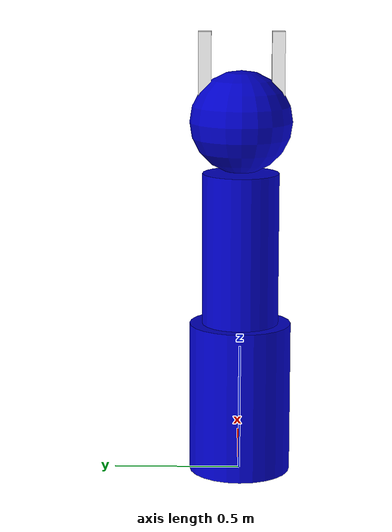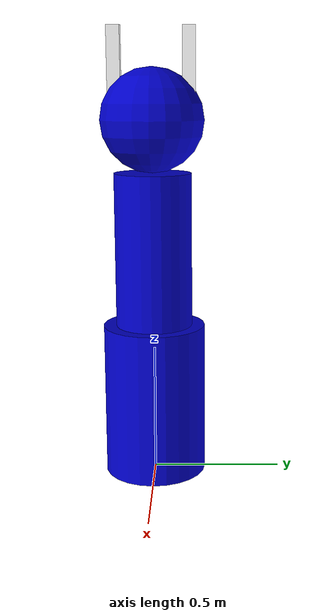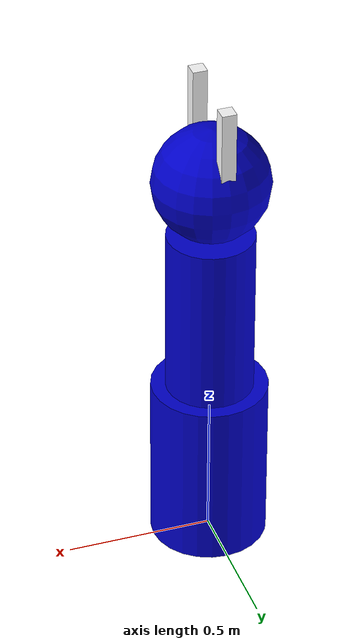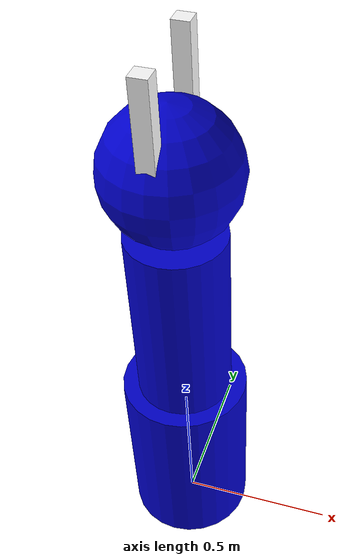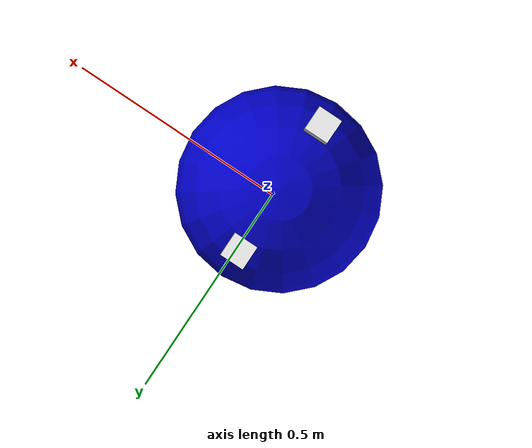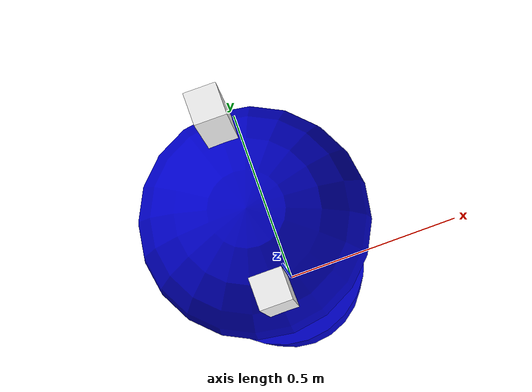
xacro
<?xml version="1.0"?>
<robot name="my_arm" xmlns:xacro="http://www.ros.org/wiki/xacro">

<!-- Import all Gazebo-customization elements, including Gazebo colors -->
<xacro:include filename="$(find arm_description)/urdf/my_arm.gazebo" />
<!-- Included URDF/XACRO Files -->
<xacro:include filename="$(find arm_description)/urdf/materials.xacro" />

<!-- Used for fixing robot to Gazebo 'base_link' -->
<link name="world">
</link>

<!-- base_link -->
<link name="base_link">
    <visual>
      <geometry>
            <box size = "0.1 0.1 0.1"/>
        </geometry>
        <material name="blue">
            <color rgba="0 0 .8 1"/>
        </material>
        <origin xyz="0 0 0"/>
    </visual>

    <collision>
      <geometry>
            <box size = "0.1 0.1 0.1"/>
        </geometry>
        <origin xyz="0 0 0"/>
    </collision>

    <inertial>
      <mass value="2e-06"/>
      <inertia ixx="1.1e-09" ixy="0" ixz="0" iyy="1.1e-09" iyz="0" izz="1.1e-09"/>
    </inertial>

</link>

<!-- upperArm -->
<xacro:property name="upperArmWidth" value="0.2" />
<xacro:property name="upperArmLen" value="0.6" />
<xacro:property name="upperArmMass" value="10" />
<link name="upperArm">
    <visual>
        <geometry>
            <cylinder radius="${upperArmWidth}" length="${upperArmLen}"/>
        </geometry>
        <material name="blue">
            <color rgba="0 0 .8 1"/>
        </material>
        <origin xyz="0 0 ${upperArmLen/2}"/>
    </visual>

    <collision>
        <geometry>
            <cylinder radius="${upperArmWidth}" length="${upperArmLen}"/>
        </geometry>
        <origin xyz="0 0 ${upperArmLen/2}"/>
    </collision>

    <inertial>
        <origin xyz="0 0 ${upperArmLen/2}"/>
        <mass value="${upperArmMass}"/>
        <inertia ixx="1.0" ixy="0.0" ixz="0.0"
                 iyy="1.0" iyz="0.0"
                 izz="1.0" />
    </inertial>

</link>
<!-- lowerArm -->
<xacro:property name="lowerArmWidth" value=".15" />
<xacro:property name="lowerArmLen" value=".6" />
<xacro:property name="lowerArmMass" value="10" />
<link name="lowerArm">
    <visual>
        <geometry>
            <cylinder radius="${lowerArmWidth}" length="${lowerArmLen}"/>
        </geometry>
        <material name="blue">
            <color rgba="0 0 .8 1"/>
        </material>
        <origin xyz="0 0 ${upperArmLen/2}"/>
    </visual>

    <collision>
        <geometry>
            <cylinder radius="${lowerArmWidth}" length="${lowerArmLen}"/>
        </geometry>
        <origin xyz="0 0 ${upperArmLen/2}"/>
    </collision>

    <inertial>
        <origin xyz="0 0 ${upperArmLen/2}"/>
        <mass value="${lowerArmMass}"/>
        <inertia ixx="1.0" ixy="0.0" ixz="0.0"
                 iyy="1.0" iyz="0.0"
                 izz="1.0" />
    </inertial>

</link>
<!-- hand -->
<xacro:property name="handRadius" value=".2" />
<link name="hand">
    <visual>
        <geometry>
            <sphere radius="${handRadius}"/>
        </geometry>
        <material name="blue">
            <color rgba="0 0 .8 1"/>
        </material>
        <origin xyz="0 0 ${handRadius}"/>
    </visual>

    <collision>
        <geometry>
            <sphere radius="${handRadius}"/>
        </geometry>
        <origin xyz="0 0 ${handRadius}"/>
    </collision>

    <inertial>
        <origin xyz="0 0 ${handRadius}"/>
        <mass value="${lowerArmMass}"/>
        <inertia ixx="1.0" ixy="0.0" ixz="0.0"
                 iyy="1.0" iyz="0.0"
                 izz="1.0" />
    </inertial>
</link>
<!-- Finger Macro -->
<xacro:property name="fingerWidth" value=".05" />
<xacro:property name="fingerLen" value=".3" />
<xacro:property name="fingerHeight" value=".05" />
<xacro:property name="fingerMass" value="10" />
<xacro:property name="pi" value="3.1415926" />
<xacro:macro name="finger" params="prefix reflect">
    <link name="${prefix}_finger">
        <visual>
            <geometry>
                <box size="${fingerLen} ${fingerWidth} ${fingerHeight}"/>
            </geometry>
            <origin xyz="0 ${reflect*handRadius/1.414} ${handRadius}" rpy="0 ${pi/2} ${reflect*pi/2} "/>
            <material name="white">
                <color rgba="1 1 1 1"/>
            </material>
        </visual>

        <collision>
            <geometry>
                <box size="${fingerLen} ${fingerWidth} ${fingerHeight}"/>
            </geometry>
            <origin xyz="0 ${reflect*handRadius/1.414} ${handRadius}" rpy="0 ${pi/2} ${reflect*pi/2} "/>
        </collision>

        <inertial>
            <origin xyz="0 ${reflect*handRadius/1.414} ${handRadius}" rpy="0 ${pi/2} ${reflect*pi/2} "/>
            <mass value="${fingerMass}"/>
            <inertia ixx="1.0" ixy="0.0" ixz="0.0"
                     iyy="1.0" iyz="0.0"
                     izz="1.0" />
        </inertial>
    </link>

    <joint name="hand_to_${prefix}_finger" type="continuous">
        <parent link="hand"/>
        <child link="${prefix}_finger"/>
        <origin xyz="0 0 ${handRadius}"/>
    </joint>
</xacro:macro>

<xacro:finger prefix="right" reflect="1" />
<xacro:finger prefix="left" reflect="-1" />

<!-- joint -->
<xacro:property name="baseOrigin" value="0 0 0" />
<xacro:property name="elbowOrigin" value="0 0 ${upperArmLen}" />
<xacro:property name="wistOrigin" value="0 0 ${lowerArmLen}" />

<joint name="fixed" type="fixed">
  <parent link="world"/>
  <child link="base_link"/>
</joint>

<joint name="base" type="continuous">
  <parent link="base_link"/>
  <child link="upperArm"/>
  <origin xyz="${baseOrigin}"/>
</joint>

<joint name="elbow" type="continuous">
  <parent link="upperArm"/>
  <child link="lowerArm"/>
  <origin xyz="${elbowOrigin}"/>
  <dynamics damping="11.7"/>
</joint>

<joint name="wist" type="continuous">
  <parent link="lowerArm"/>
  <child link="hand"/>
  <origin xyz="${wistOrigin}"/>
</joint>

<!-- Transmission -->
<transmission name="tran1">
  <type>transmission_interface/SimpleTransmission</type>
  <joint name="base">
    <hardwareInterface>EffortJointInterface</hardwareInterface>
  </joint>
  <actuator name="motor1">
    <hardwareInterface>EffortJointInterface</hardwareInterface>
    <mechanicalReduction>1</mechanicalReduction>
  </actuator>
</transmission>

<transmission name="tran2">
  <type>transmission_interface/SimpleTransmission</type>
  <joint name="elbow">
    <hardwareInterface>EffortJointInterface</hardwareInterface>
  </joint>
  <actuator name="motor2">
    <hardwareInterface>EffortJointInterface</hardwareInterface>
    <mechanicalReduction>1</mechanicalReduction>
  </actuator>
</transmission>

<transmission name="tran3">
  <type>transmission_interface/SimpleTransmission</type>
  <joint name="wist">
    <hardwareInterface>EffortJointInterface</hardwareInterface>
  </joint>
  <actuator name="motor3">
    <hardwareInterface>EffortJointInterface</hardwareInterface>
    <mechanicalReduction>1</mechanicalReduction>
  </actuator>
</transmission>

<transmission name="tran4">
  <type>transmission_interface/SimpleTransmission</type>
  <joint name="hand_to_right_finger">
    <hardwareInterface>EffortJointInterface</hardwareInterface>
  </joint>
  <actuator name="motor4">
    <hardwareInterface>EffortJointInterface</hardwareInterface>
    <mechanicalReduction>1</mechanicalReduction>
  </actuator>
</transmission>

<transmission name="tran5">
  <type>transmission_interface/SimpleTransmission</type>
  <joint name="hand_to_left_finger">
    <hardwareInterface>EffortJointInterface</hardwareInterface>
  </joint>
  <actuator name="motor5">
    <hardwareInterface>EffortJointInterface</hardwareInterface>
    <mechanicalReduction>1</mechanicalReduction>
  </actuator>
</transmission>

</robot>
